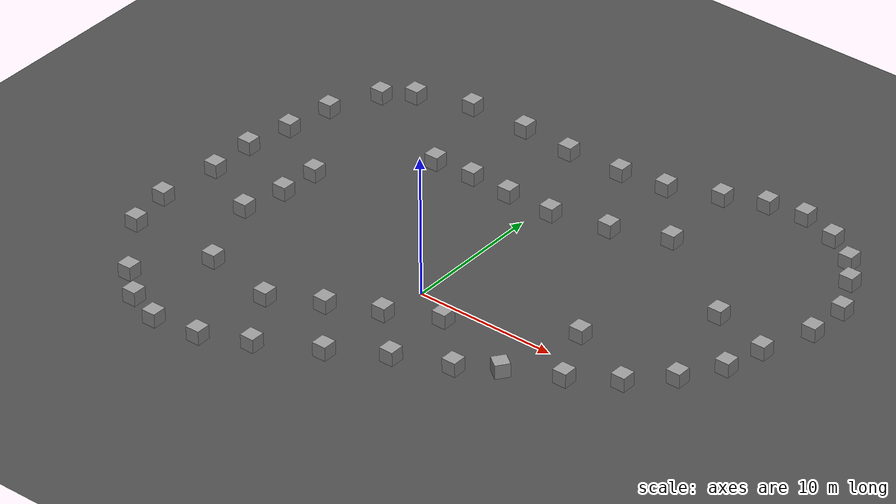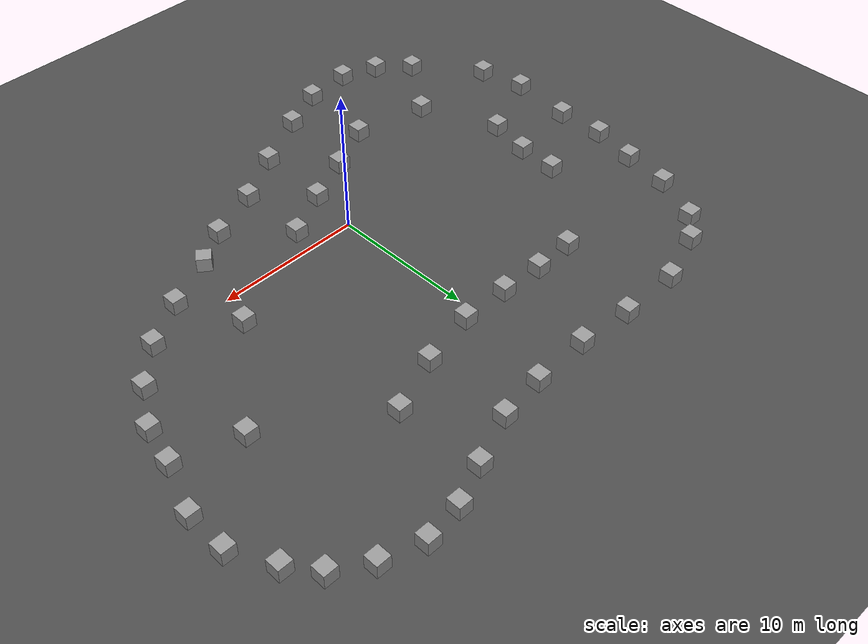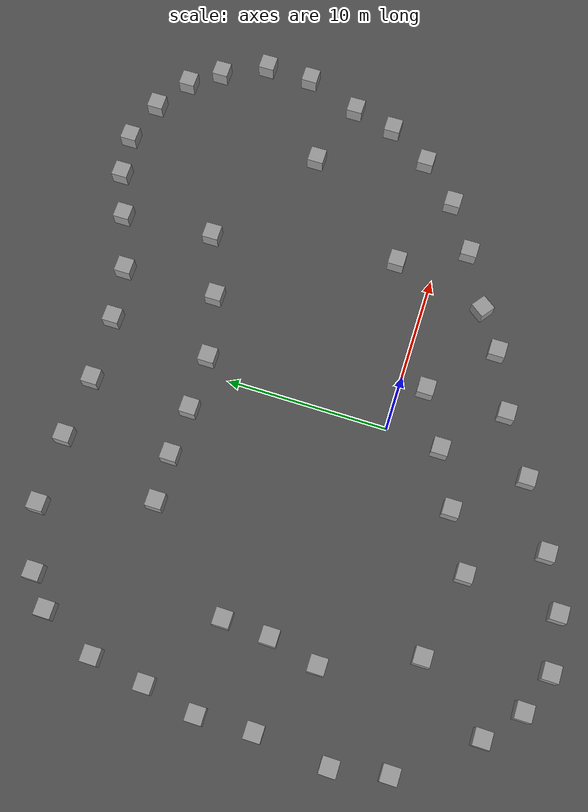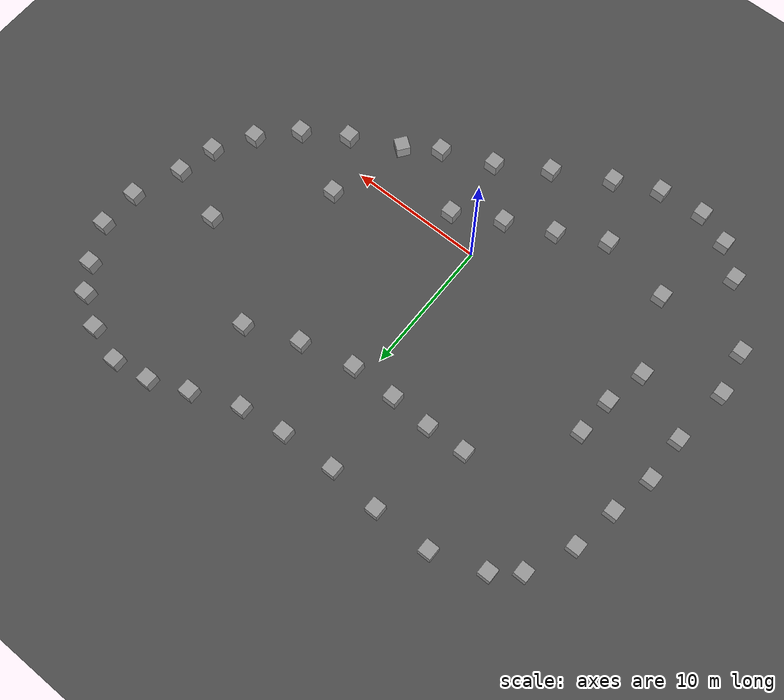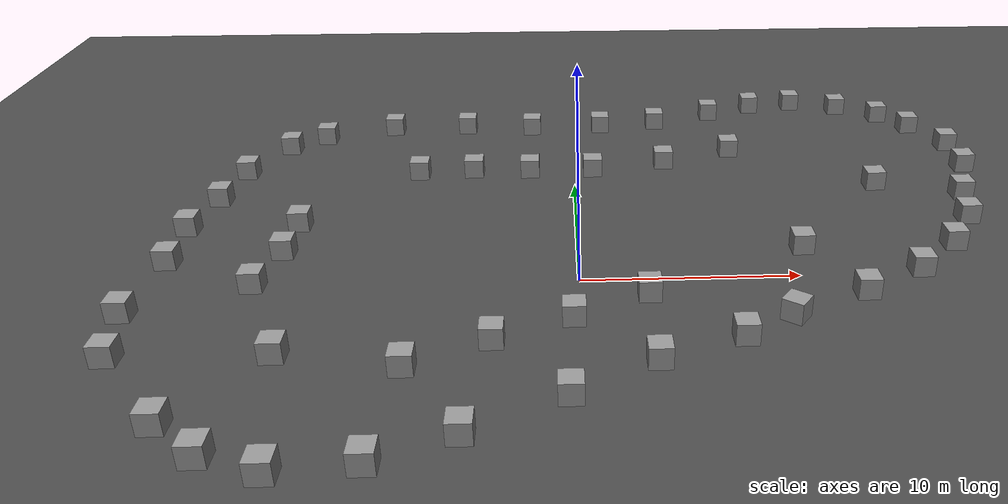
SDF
<sdf version="1.7">
 <world name="default">
  <scene>
   <sky><clouds><speed>3</speed></clouds></sky>
   <ambient>1 1 1 1</ambient>
   <shadows>0</shadows>
   <background>0.7 0.7 0.7 1</background>
  </scene>
  <light name="sun" type="directional">
   <pose>0 0 10 0 -0 0</pose>
   <diffuse>0.8 0.8 0.8 1</diffuse>
   <specular>0.1 0.1 0.1 1</specular>
   <attenuation>
    <range>1000</range>
    <constant>0.9</constant>
    <linear>0.01</linear>
    <quadratic>0.001</quadratic>
   </attenuation>
   <direction>-0.5 0.5 -1</direction>
   <spot><inner_angle>0</inner_angle><outer_angle>0</outer_angle><falloff>0</falloff></spot>
  </light>
  <model name="ground_plane">
   <static>1</static>
   <link name="link">
    <collision name="collision">
     <geometry><plane><normal>0 0 1</normal><size>120 120</size></plane></geometry>
     <surface><friction><ode><mu>100</mu><mu2>50</mu2></ode></friction></surface>
    </collision>
    <visual name="visual">
     <cast_shadows>0</cast_shadows>
     <geometry><plane><normal>0 0 1</normal><size>120 120</size></plane></geometry>
     <material><script><uri>model://materials/gazebo.material</uri><name>Gazebo/Asphalt</name></script></material>
    </visual>
   </link>
  </model>
  <gravity>0 0 -9.8</gravity>
  <magnetic_field>6e-06 2.3e-05 -4.2e-05</magnetic_field>
  <atmosphere type="adiabatic"/>
  <physics type="ode">
   <max_step_size>0.001</max_step_size>
   <real_time_factor>1</real_time_factor>
   <real_time_update_rate>1000</real_time_update_rate>
  </physics>
  <spherical_coordinates>
   <surface_model>EARTH_WGS84</surface_model>
   <latitude_deg>0</latitude_deg>
   <longitude_deg>0</longitude_deg>
   <elevation>0</elevation>
   <heading_deg>0</heading_deg>
  </spherical_coordinates>
  <model name="unit_box">
   <pose>-10.5494 18.0926 0.5 0 -0 0</pose>
   <link name="link">
    <inertial>
     <mass>1</mass>
     <inertia>
      <ixx>0.166667</ixx>
      <ixy>0</ixy>
      <ixz>0</ixz>
      <iyy>0.166667</iyy>
      <iyz>0</iyz>
      <izz>0.166667</izz>
     </inertia>
    </inertial>
    <collision name="collision"><geometry><box><size>1 1 1</size></box></geometry></collision>
    <visual name="visual">
     <geometry><box><size>1 1 1</size></box></geometry>
     <material>
      <script><name>Gazebo/Grey</name><uri>file://media/materials/scripts/gazebo.material</uri></script>
     </material>
    </visual>
   </link>
  </model>
  <model name="unit_box_0">
   <pose>-6.23934 18.1289 0.5 0 -0 0</pose>
   <link name="link">
    <inertial>
     <mass>1</mass>
     <inertia>
      <ixx>0.166667</ixx>
      <ixy>0</ixy>
      <ixz>0</ixz>
      <iyy>0.166667</iyy>
      <iyz>0</iyz>
      <izz>0.166667</izz>
     </inertia>
    </inertial>
    <collision name="collision"><geometry><box><size>1 1 1</size></box></geometry></collision>
    <visual name="visual">
     <geometry><box><size>1 1 1</size></box></geometry>
     <material>
      <script><name>Gazebo/Grey</name><uri>file://media/materials/scripts/gazebo.material</uri></script>
     </material>
    </visual>
   </link>
  </model>
  <model name="unit_box_1">
   <pose>-2.39127 17.8381 0.5 0 -0 0</pose>
   <link name="link">
    <inertial>
     <mass>1</mass>
     <inertia>
      <ixx>0.166667</ixx>
      <ixy>0</ixy>
      <ixz>0</ixz>
      <iyy>0.166667</iyy>
      <iyz>0</iyz>
      <izz>0.166667</izz>
     </inertia>
    </inertial>
    <collision name="collision"><geometry><box><size>1 1 1</size></box></geometry></collision>
    <visual name="visual">
     <geometry><box><size>1 1 1</size></box></geometry>
     <material>
      <script><name>Gazebo/Grey</name><uri>file://media/materials/scripts/gazebo.material</uri></script>
     </material>
    </visual>
   </link>
  </model>
  <model name="unit_box_2">
   <pose>-2.39961 11.603 0.5 0 -0 0</pose>
   <link name="link">
    <inertial>
     <mass>1</mass>
     <inertia>
      <ixx>0.166667</ixx>
      <ixy>0</ixy>
      <ixz>0</ixz>
      <iyy>0.166667</iyy>
      <iyz>0</iyz>
      <izz>0.166667</izz>
     </inertia>
    </inertial>
    <collision name="collision"><geometry><box><size>1 1 1</size></box></geometry></collision>
    <visual name="visual">
     <geometry><box><size>1 1 1</size></box></geometry>
     <material>
      <script><name>Gazebo/Grey</name><uri>file://media/materials/scripts/gazebo.material</uri></script>
     </material>
    </visual>
   </link>
  </model>
  <model name="unit_box_3">
   <pose>4.9539 12.5053 0.5 0 -0 0</pose>
   <link name="link">
    <inertial>
     <mass>1</mass>
     <inertia>
      <ixx>0.166667</ixx>
      <ixy>0</ixy>
      <ixz>0</ixz>
      <iyy>0.166667</iyy>
      <iyz>0</iyz>
      <izz>0.166667</izz>
     </inertia>
    </inertial>
    <collision name="collision"><geometry><box><size>1 1 1</size></box></geometry></collision>
    <visual name="visual">
     <geometry><box><size>1 1 1</size></box></geometry>
     <material>
      <script><name>Gazebo/Grey</name><uri>file://media/materials/scripts/gazebo.material</uri></script>
     </material>
    </visual>
   </link>
  </model>
  <model name="unit_box_4">
   <pose>8.79453 13.9991 0.5 0 -0 0</pose>
   <link name="link">
    <inertial>
     <mass>1</mass>
     <inertia>
      <ixx>0.166667</ixx>
      <ixy>0</ixy>
      <ixz>0</ixz>
      <iyy>0.166667</iyy>
      <iyz>0</iyz>
      <izz>0.166667</izz>
     </inertia>
    </inertial>
    <collision name="collision"><geometry><box><size>1 1 1</size></box></geometry></collision>
    <visual name="visual">
     <geometry><box><size>1 1 1</size></box></geometry>
     <material>
      <script><name>Gazebo/Grey</name><uri>file://media/materials/scripts/gazebo.material</uri></script>
     </material>
    </visual>
   </link>
  </model>
  <model name="unit_box_5">
   <pose>1.00676 11.6077 0.5 0 -0 0</pose>
   <link name="link">
    <inertial>
     <mass>1</mass>
     <inertia>
      <ixx>0.166667</ixx>
      <ixy>0</ixy>
      <ixz>0</ixz>
      <iyy>0.166667</iyy>
      <iyz>0</iyz>
      <izz>0.166667</izz>
     </inertia>
    </inertial>
    <collision name="collision"><geometry><box><size>1 1 1</size></box></geometry></collision>
    <visual name="visual">
     <geometry><box><size>1 1 1</size></box></geometry>
     <material>
      <script><name>Gazebo/Grey</name><uri>file://media/materials/scripts/gazebo.material</uri></script>
     </material>
    </visual>
   </link>
  </model>
  <model name="unit_box_6">
   <pose>4.97314 18.4417 0.5 0 -0 0</pose>
   <link name="link">
    <inertial>
     <mass>1</mass>
     <inertia>
      <ixx>0.166667</ixx>
      <ixy>0</ixy>
      <ixz>0</ixz>
      <iyy>0.166667</iyy>
      <iyz>0</iyz>
      <izz>0.166667</izz>
     </inertia>
    </inertial>
    <collision name="collision"><geometry><box><size>1 1 1</size></box></geometry></collision>
    <visual name="visual">
     <geometry><box><size>1 1 1</size></box></geometry>
     <material>
      <script><name>Gazebo/Grey</name><uri>file://media/materials/scripts/gazebo.material</uri></script>
     </material>
    </visual>
   </link>
  </model>
  <model name="unit_box_7">
   <pose>1.6664 17.997 0.5 0 -0 0</pose>
   <link name="link">
    <inertial>
     <mass>1</mass>
     <inertia>
      <ixx>0.166667</ixx>
      <ixy>0</ixy>
      <ixz>0</ixz>
      <iyy>0.166667</iyy>
      <iyz>0</iyz>
      <izz>0.166667</izz>
     </inertia>
    </inertial>
    <collision name="collision"><geometry><box><size>1 1 1</size></box></geometry></collision>
    <visual name="visual">
     <geometry><box><size>1 1 1</size></box></geometry>
     <material>
      <script><name>Gazebo/Grey</name><uri>file://media/materials/scripts/gazebo.material</uri></script>
     </material>
    </visual>
   </link>
  </model>
  <model name="unit_box_8">
   <pose>19.5135 5.24704 0.5 0 -0 0</pose>
   <link name="link">
    <inertial>
     <mass>1</mass>
     <inertia>
      <ixx>0.166667</ixx>
      <ixy>0</ixy>
      <ixz>0</ixz>
      <iyy>0.166667</iyy>
      <iyz>0</iyz>
      <izz>0.166667</izz>
     </inertia>
    </inertial>
    <collision name="collision"><geometry><box><size>1 1 1</size></box></geometry></collision>
    <visual name="visual">
     <geometry><box><size>1 1 1</size></box></geometry>
     <material>
      <script><name>Gazebo/Grey</name><uri>file://media/materials/scripts/gazebo.material</uri></script>
     </material>
    </visual>
   </link>
  </model>
  <model name="unit_box_9">
   <pose>21.4606 11.4533 0.5 0 -0 0</pose>
   <link name="link">
    <inertial>
     <mass>1</mass>
     <inertia>
      <ixx>0.166667</ixx>
      <ixy>0</ixy>
      <ixz>0</ixz>
      <iyy>0.166667</iyy>
      <iyz>0</iyz>
      <izz>0.166667</izz>
     </inertia>
    </inertial>
    <collision name="collision"><geometry><box><size>1 1 1</size></box></geometry></collision>
    <visual name="visual">
     <geometry><box><size>1 1 1</size></box></geometry>
     <material>
      <script><name>Gazebo/Grey</name><uri>file://media/materials/scripts/gazebo.material</uri></script>
     </material>
    </visual>
   </link>
  </model>
  <model name="unit_box_10">
   <pose>21.5324 14.4386 0.5 0 -0 0</pose>
   <link name="link">
    <inertial>
     <mass>1</mass>
     <inertia>
      <ixx>0.166667</ixx>
      <ixy>0</ixy>
      <ixz>0</ixz>
      <iyy>0.166667</iyy>
      <iyz>0</iyz>
      <izz>0.166667</izz>
     </inertia>
    </inertial>
    <collision name="collision"><geometry><box><size>1 1 1</size></box></geometry></collision>
    <visual name="visual">
     <geometry><box><size>1 1 1</size></box></geometry>
     <material>
      <script><name>Gazebo/Grey</name><uri>file://media/materials/scripts/gazebo.material</uri></script>
     </material>
    </visual>
   </link>
  </model>
  <model name="unit_box_11">
   <pose>20.1719 7.97138 0.5 0 -0 0</pose>
   <link name="link">
    <inertial>
     <mass>1</mass>
     <inertia>
      <ixx>0.166667</ixx>
      <ixy>0</ixy>
      <ixz>0</ixz>
      <iyy>0.166667</iyy>
      <iyz>0</iyz>
      <izz>0.166667</izz>
     </inertia>
    </inertial>
    <collision name="collision"><geometry><box><size>1 1 1</size></box></geometry></collision>
    <visual name="visual">
     <geometry><box><size>1 1 1</size></box></geometry>
     <material>
      <script><name>Gazebo/Grey</name><uri>file://media/materials/scripts/gazebo.material</uri></script>
     </material>
    </visual>
   </link>
  </model>
  <model name="unit_box_12">
   <pose>15.9184 9.31234 0.5 0 -0 0</pose>
   <link name="link">
    <inertial>
     <mass>1</mass>
     <inertia>
      <ixx>0.166667</ixx>
      <ixy>0</ixy>
      <ixz>0</ixz>
      <iyy>0.166667</iyy>
      <iyz>0</iyz>
      <izz>0.166667</izz>
     </inertia>
    </inertial>
    <collision name="collision"><geometry><box><size>1 1 1</size></box></geometry></collision>
    <visual name="visual">
     <geometry><box><size>1 1 1</size></box></geometry>
     <material>
      <script><name>Gazebo/Grey</name><uri>file://media/materials/scripts/gazebo.material</uri></script>
     </material>
    </visual>
   </link>
  </model>
  <model name="unit_box_13">
   <pose>17.8651 2.54457 0.5 0 -0 0</pose>
   <link name="link">
    <inertial>
     <mass>1</mass>
     <inertia>
      <ixx>0.166667</ixx>
      <ixy>0</ixy>
      <ixz>0</ixz>
      <iyy>0.166667</iyy>
      <iyz>0</iyz>
      <izz>0.166667</izz>
     </inertia>
    </inertial>
    <collision name="collision"><geometry><box><size>1 1 1</size></box></geometry></collision>
    <visual name="visual">
     <geometry><box><size>1 1 1</size></box></geometry>
     <material>
      <script><name>Gazebo/Grey</name><uri>file://media/materials/scripts/gazebo.material</uri></script>
     </material>
    </visual>
   </link>
  </model>
  <model name="unit_box_14">
   <pose>15.5249 0.145088 0.5 0 -0 0</pose>
   <link name="link">
    <inertial>
     <mass>1</mass>
     <inertia>
      <ixx>0.166667</ixx>
      <ixy>0</ixy>
      <ixz>0</ixz>
      <iyy>0.166667</iyy>
      <iyz>0</iyz>
      <izz>0.166667</izz>
     </inertia>
    </inertial>
    <collision name="collision"><geometry><box><size>1 1 1</size></box></geometry></collision>
    <visual name="visual">
     <geometry><box><size>1 1 1</size></box></geometry>
     <material>
      <script><name>Gazebo/Grey</name><uri>file://media/materials/scripts/gazebo.material</uri></script>
     </material>
    </visual>
   </link>
  </model>
  <model name="unit_box_15">
   <pose>10.5541 2.41492 0.5 0 -0 0</pose>
   <link name="link">
    <inertial>
     <mass>1</mass>
     <inertia>
      <ixx>0.166667</ixx>
      <ixy>0</ixy>
      <ixz>0</ixz>
      <iyy>0.166667</iyy>
      <iyz>0</iyz>
      <izz>0.166667</izz>
     </inertia>
    </inertial>
    <collision name="collision"><geometry><box><size>1 1 1</size></box></geometry></collision>
    <visual name="visual">
     <geometry><box><size>1 1 1</size></box></geometry>
     <material>
      <script><name>Gazebo/Grey</name><uri>file://media/materials/scripts/gazebo.material</uri></script>
     </material>
    </visual>
   </link>
  </model>
  <model name="unit_box_16">
   <pose>12.5301 -1.72327 0.5 0 -0 0</pose>
   <link name="link">
    <inertial>
     <mass>1</mass>
     <inertia>
      <ixx>0.166667</ixx>
      <ixy>0</ixy>
      <ixz>0</ixz>
      <iyy>0.166667</iyy>
      <iyz>0</iyz>
      <izz>0.166667</izz>
     </inertia>
    </inertial>
    <collision name="collision"><geometry><box><size>1 1 1</size></box></geometry></collision>
    <visual name="visual">
     <geometry><box><size>1 1 1</size></box></geometry>
     <material>
      <script><name>Gazebo/Grey</name><uri>file://media/materials/scripts/gazebo.material</uri></script>
     </material>
    </visual>
   </link>
  </model>
  <model name="unit_box_17">
   <pose>9.02863 -3.46364 0.5 2.50444 -1.57079 3.14159</pose>
   <link name="link">
    <inertial>
     <mass>1</mass>
     <inertia>
      <ixx>0.166667</ixx>
      <ixy>0</ixy>
      <ixz>0</ixz>
      <iyy>0.166667</iyy>
      <iyz>0</iyz>
      <izz>0.166667</izz>
     </inertia>
    </inertial>
    <collision name="collision"><geometry><box><size>1 1 1</size></box></geometry></collision>
    <visual name="visual">
     <geometry><box><size>1 1 1</size></box></geometry>
     <material>
      <script><name>Gazebo/Grey</name><uri>file://media/materials/scripts/gazebo.material</uri></script>
     </material>
    </visual>
   </link>
  </model>
  <model name="unit_box_18">
   <pose>3.02903 -1.55356 0.5 0 -0 0</pose>
   <link name="link">
    <inertial>
     <mass>1</mass>
     <inertia>
      <ixx>0.166667</ixx>
      <ixy>0</ixy>
      <ixz>0</ixz>
      <iyy>0.166667</iyy>
      <iyz>0</iyz>
      <izz>0.166667</izz>
     </inertia>
    </inertial>
    <collision name="collision"><geometry><box><size>1 1 1</size></box></geometry></collision>
    <visual name="visual">
     <geometry><box><size>1 1 1</size></box></geometry>
     <material>
      <script><name>Gazebo/Grey</name><uri>file://media/materials/scripts/gazebo.material</uri></script>
     </material>
    </visual>
   </link>
  </model>
  <model name="unit_box_19">
   <pose>6.64773 -5.03198 0.5 0 -0 0</pose>
   <link name="link">
    <inertial>
     <mass>1</mass>
     <inertia>
      <ixx>0.166667</ixx>
      <ixy>0</ixy>
      <ixz>0</ixz>
      <iyy>0.166667</iyy>
      <iyz>0</iyz>
      <izz>0.166667</izz>
     </inertia>
    </inertial>
    <collision name="collision"><geometry><box><size>1 1 1</size></box></geometry></collision>
    <visual name="visual">
     <geometry><box><size>1 1 1</size></box></geometry>
     <material>
      <script><name>Gazebo/Grey</name><uri>file://media/materials/scripts/gazebo.material</uri></script>
     </material>
    </visual>
   </link>
  </model>
  <model name="unit_box_20">
   <pose>3.00149 -6.54146 0.5 0 -0 0</pose>
   <link name="link">
    <inertial>
     <mass>1</mass>
     <inertia>
      <ixx>0.166667</ixx>
      <ixy>0</ixy>
      <ixz>0</ixz>
      <iyy>0.166667</iyy>
      <iyz>0</iyz>
      <izz>0.166667</izz>
     </inertia>
    </inertial>
    <collision name="collision"><geometry><box><size>1 1 1</size></box></geometry></collision>
    <visual name="visual">
     <geometry><box><size>1 1 1</size></box></geometry>
     <material>
      <script><name>Gazebo/Grey</name><uri>file://media/materials/scripts/gazebo.material</uri></script>
     </material>
    </visual>
   </link>
  </model>
  <model name="unit_box_21">
   <pose>-0.287348 -3.34583 0.5 0 -0 0</pose>
   <link name="link">
    <inertial>
     <mass>1</mass>
     <inertia>
      <ixx>0.166667</ixx>
      <ixy>0</ixy>
      <ixz>0</ixz>
      <iyy>0.166667</iyy>
      <iyz>0</iyz>
      <izz>0.166667</izz>
     </inertia>
    </inertial>
    <collision name="collision"><geometry><box><size>1 1 1</size></box></geometry></collision>
    <visual name="visual">
     <geometry><box><size>1 1 1</size></box></geometry>
     <material>
      <script><name>Gazebo/Grey</name><uri>file://media/materials/scripts/gazebo.material</uri></script>
     </material>
    </visual>
   </link>
  </model>
  <model name="unit_box_22">
   <pose>-3.6435 -4.90846 0.5 0 -0 0</pose>
   <link name="link">
    <inertial>
     <mass>1</mass>
     <inertia>
      <ixx>0.166667</ixx>
      <ixy>0</ixy>
      <ixz>0</ixz>
      <iyy>0.166667</iyy>
      <iyz>0</iyz>
      <izz>0.166667</izz>
     </inertia>
    </inertial>
    <collision name="collision"><geometry><box><size>1 1 1</size></box></geometry></collision>
    <visual name="visual">
     <geometry><box><size>1 1 1</size></box></geometry>
     <material>
      <script><name>Gazebo/Grey</name><uri>file://media/materials/scripts/gazebo.material</uri></script>
     </material>
    </visual>
   </link>
  </model>
  <model name="unit_box_23">
   <pose>-7.02158 -6.6234 0.5 0 -0 0</pose>
   <link name="link">
    <inertial>
     <mass>1</mass>
     <inertia>
      <ixx>0.166667</ixx>
      <ixy>0</ixy>
      <ixz>0</ixz>
      <iyy>0.166667</iyy>
      <iyz>0</iyz>
      <izz>0.166667</izz>
     </inertia>
    </inertial>
    <collision name="collision"><geometry><box><size>1 1 1</size></box></geometry></collision>
    <visual name="visual">
     <geometry><box><size>1 1 1</size></box></geometry>
     <material>
      <script><name>Gazebo/Grey</name><uri>file://media/materials/scripts/gazebo.material</uri></script>
     </material>
    </visual>
   </link>
  </model>
  <model name="unit_box_24">
   <pose>-0.507915 -8.66868 0.5 0 -0 0</pose>
   <link name="link">
    <inertial>
     <mass>1</mass>
     <inertia>
      <ixx>0.166667</ixx>
      <ixy>0</ixy>
      <ixz>0</ixz>
      <iyy>0.166667</iyy>
      <iyz>0</iyz>
      <izz>0.166667</izz>
     </inertia>
    </inertial>
    <collision name="collision"><geometry><box><size>1 1 1</size></box></geometry></collision>
    <visual name="visual">
     <geometry><box><size>1 1 1</size></box></geometry>
     <material>
      <script><name>Gazebo/Grey</name><uri>file://media/materials/scripts/gazebo.material</uri></script>
     </material>
    </visual>
   </link>
  </model>
  <model name="unit_box_25">
   <pose>-4.44028 -10.7902 0.5 0 -0 0</pose>
   <link name="link">
    <inertial>
     <mass>1</mass>
     <inertia>
      <ixx>0.166667</ixx>
      <ixy>0</ixy>
      <ixz>0</ixz>
      <iyy>0.166667</iyy>
      <iyz>0</iyz>
      <izz>0.166667</izz>
     </inertia>
    </inertial>
    <collision name="collision"><geometry><box><size>1 1 1</size></box></geometry></collision>
    <visual name="visual">
     <geometry><box><size>1 1 1</size></box></geometry>
     <material>
      <script><name>Gazebo/Grey</name><uri>file://media/materials/scripts/gazebo.material</uri></script>
     </material>
    </visual>
   </link>
  </model>
  <model name="unit_box_26">
   <pose>-7.57529 -12.2264 0.5 0 -0 0</pose>
   <link name="link">
    <inertial>
     <mass>1</mass>
     <inertia>
      <ixx>0.166667</ixx>
      <ixy>0</ixy>
      <ixz>0</ixz>
      <iyy>0.166667</iyy>
      <iyz>0</iyz>
      <izz>0.166667</izz>
     </inertia>
    </inertial>
    <collision name="collision"><geometry><box><size>1 1 1</size></box></geometry></collision>
    <visual name="visual">
     <geometry><box><size>1 1 1</size></box></geometry>
     <material>
      <script><name>Gazebo/Grey</name><uri>file://media/materials/scripts/gazebo.material</uri></script>
     </material>
    </visual>
   </link>
  </model>
  <model name="unit_box_27">
   <pose>-10.8684 -12.5618 0.5 0 -0 0</pose>
   <link name="link">
    <inertial>
     <mass>1</mass>
     <inertia>
      <ixx>0.166667</ixx>
      <ixy>0</ixy>
      <ixz>0</ixz>
      <iyy>0.166667</iyy>
      <iyz>0</iyz>
      <izz>0.166667</izz>
     </inertia>
    </inertial>
    <collision name="collision"><geometry><box><size>1 1 1</size></box></geometry></collision>
    <visual name="visual">
     <geometry><box><size>1 1 1</size></box></geometry>
     <material>
      <script><name>Gazebo/Grey</name><uri>file://media/materials/scripts/gazebo.material</uri></script>
     </material>
    </visual>
   </link>
  </model>
  <model name="unit_box_28">
   <pose>-13.342 -11.6286 0.5 0 -0 0</pose>
   <link name="link">
    <inertial>
     <mass>1</mass>
     <inertia>
      <ixx>0.166667</ixx>
      <ixy>0</ixy>
      <ixz>0</ixz>
      <iyy>0.166667</iyy>
      <iyz>0</iyz>
      <izz>0.166667</izz>
     </inertia>
    </inertial>
    <collision name="collision"><geometry><box><size>1 1 1</size></box></geometry></collision>
    <visual name="visual">
     <geometry><box><size>1 1 1</size></box></geometry>
     <material>
      <script><name>Gazebo/Grey</name><uri>file://media/materials/scripts/gazebo.material</uri></script>
     </material>
    </visual>
   </link>
  </model>
  <model name="unit_box_29">
   <pose>-12.1977 -5.56433 0.5 0 -0 0</pose>
   <link name="link">
    <inertial>
     <mass>1</mass>
     <inertia>
      <ixx>0.166667</ixx>
      <ixy>0</ixy>
      <ixz>0</ixz>
      <iyy>0.166667</iyy>
      <iyz>0</iyz>
      <izz>0.166667</izz>
     </inertia>
    </inertial>
    <collision name="collision"><geometry><box><size>1 1 1</size></box></geometry></collision>
    <visual name="visual">
     <geometry><box><size>1 1 1</size></box></geometry>
     <material>
      <script><name>Gazebo/Grey</name><uri>file://media/materials/scripts/gazebo.material</uri></script>
     </material>
    </visual>
   </link>
  </model>
  <model name="unit_box_30">
   <pose>-15.3849 -9.8035 0.5 0 -0 0</pose>
   <link name="link">
    <inertial>
     <mass>1</mass>
     <inertia>
      <ixx>0.166667</ixx>
      <ixy>0</ixy>
      <ixz>0</ixz>
      <iyy>0.166667</iyy>
      <iyz>0</iyz>
      <izz>0.166667</izz>
     </inertia>
    </inertial>
    <collision name="collision"><geometry><box><size>1 1 1</size></box></geometry></collision>
    <visual name="visual">
     <geometry><box><size>1 1 1</size></box></geometry>
     <material>
      <script><name>Gazebo/Grey</name><uri>file://media/materials/scripts/gazebo.material</uri></script>
     </material>
    </visual>
   </link>
  </model>
  <model name="unit_box_31">
   <pose>-18.6872 -5.53859 0.5 0 -0 0</pose>
   <link name="link">
    <inertial>
     <mass>1</mass>
     <inertia>
      <ixx>0.166667</ixx>
      <ixy>0</ixy>
      <ixz>0</ixz>
      <iyy>0.166667</iyy>
      <iyz>0</iyz>
      <izz>0.166667</izz>
     </inertia>
    </inertial>
    <collision name="collision"><geometry><box><size>1 1 1</size></box></geometry></collision>
    <visual name="visual">
     <geometry><box><size>1 1 1</size></box></geometry>
     <material>
      <script><name>Gazebo/Grey</name><uri>file://media/materials/scripts/gazebo.material</uri></script>
     </material>
    </visual>
   </link>
  </model>
  <model name="unit_box_32">
   <pose>-13.5591 5.71605 0.5 0 -0 0</pose>
   <link name="link">
    <inertial>
     <mass>1</mass>
     <inertia>
      <ixx>0.166667</ixx>
      <ixy>0</ixy>
      <ixz>0</ixz>
      <iyy>0.166667</iyy>
      <iyz>0</iyz>
      <izz>0.166667</izz>
     </inertia>
    </inertial>
    <collision name="collision"><geometry><box><size>1 1 1</size></box></geometry></collision>
    <visual name="visual">
     <geometry><box><size>1 1 1</size></box></geometry>
     <material>
      <script><name>Gazebo/Grey</name><uri>file://media/materials/scripts/gazebo.material</uri></script>
     </material>
    </visual>
   </link>
  </model>
  <model name="unit_box_33">
   <pose>-13.7132 2.89505 0.5 0 -0 0</pose>
   <link name="link">
    <inertial>
     <mass>1</mass>
     <inertia>
      <ixx>0.166667</ixx>
      <ixy>0</ixy>
      <ixz>0</ixz>
      <iyy>0.166667</iyy>
      <iyz>0</iyz>
      <izz>0.166667</izz>
     </inertia>
    </inertial>
    <collision name="collision"><geometry><box><size>1 1 1</size></box></geometry></collision>
    <visual name="visual">
     <geometry><box><size>1 1 1</size></box></geometry>
     <material>
      <script><name>Gazebo/Grey</name><uri>file://media/materials/scripts/gazebo.material</uri></script>
     </material>
    </visual>
   </link>
  </model>
  <model name="unit_box_34">
   <pose>-14.3919 -0.117081 0.5 0 -0 0</pose>
   <link name="link">
    <inertial>
     <mass>1</mass>
     <inertia>
      <ixx>0.166667</ixx>
      <ixy>0</ixy>
      <ixz>0</ixz>
      <iyy>0.166667</iyy>
      <iyz>0</iyz>
      <izz>0.166667</izz>
     </inertia>
    </inertial>
    <collision name="collision"><geometry><box><size>1 1 1</size></box></geometry></collision>
    <visual name="visual">
     <geometry><box><size>1 1 1</size></box></geometry>
     <material>
      <script><name>Gazebo/Grey</name><uri>file://media/materials/scripts/gazebo.material</uri></script>
     </material>
    </visual>
   </link>
  </model>
  <model name="unit_box_35">
   <pose>-19.307 -2.29817 0.5 0 -0 0</pose>
   <link name="link">
    <inertial>
     <mass>1</mass>
     <inertia>
      <ixx>0.166667</ixx>
      <ixy>0</ixy>
      <ixz>0</ixz>
      <iyy>0.166667</iyy>
      <iyz>0</iyz>
      <izz>0.166667</izz>
     </inertia>
    </inertial>
    <collision name="collision"><geometry><box><size>1 1 1</size></box></geometry></collision>
    <visual name="visual">
     <geometry><box><size>1 1 1</size></box></geometry>
     <material>
      <script><name>Gazebo/Grey</name><uri>file://media/materials/scripts/gazebo.material</uri></script>
     </material>
    </visual>
   </link>
  </model>
  <model name="unit_box_36">
   <pose>-18.8246 2.12866 0.5 0 -0 0</pose>
   <link name="link">
    <inertial>
     <mass>1</mass>
     <inertia>
      <ixx>0.166667</ixx>
      <ixy>0</ixy>
      <ixz>0</ixz>
      <iyy>0.166667</iyy>
      <iyz>0</iyz>
      <izz>0.166667</izz>
     </inertia>
    </inertial>
    <collision name="collision"><geometry><box><size>1 1 1</size></box></geometry></collision>
    <visual name="visual">
     <geometry><box><size>1 1 1</size></box></geometry>
     <material>
      <script><name>Gazebo/Grey</name><uri>file://media/materials/scripts/gazebo.material</uri></script>
     </material>
    </visual>
   </link>
  </model>
  <model name="unit_box_37">
   <pose>-18.9096 5.46903 0.5 0 -0 0</pose>
   <link name="link">
    <inertial>
     <mass>1</mass>
     <inertia>
      <ixx>0.166667</ixx>
      <ixy>0</ixy>
      <ixz>0</ixz>
      <iyy>0.166667</iyy>
      <iyz>0</iyz>
      <izz>0.166667</izz>
     </inertia>
    </inertial>
    <collision name="collision"><geometry><box><size>1 1 1</size></box></geometry></collision>
    <visual name="visual">
     <geometry><box><size>1 1 1</size></box></geometry>
     <material>
      <script><name>Gazebo/Grey</name><uri>file://media/materials/scripts/gazebo.material</uri></script>
     </material>
    </visual>
   </link>
  </model>
  <model name="unit_box_38">
   <pose>-18.233 8.69932 0.5 0 -0 0</pose>
   <link name="link">
    <inertial>
     <mass>1</mass>
     <inertia>
      <ixx>0.166667</ixx>
      <ixy>0</ixy>
      <ixz>0</ixz>
      <iyy>0.166667</iyy>
      <iyz>0</iyz>
      <izz>0.166667</izz>
     </inertia>
    </inertial>
    <collision name="collision"><geometry><box><size>1 1 1</size></box></geometry></collision>
    <visual name="visual">
     <geometry><box><size>1 1 1</size></box></geometry>
     <material>
      <script><name>Gazebo/Grey</name><uri>file://media/materials/scripts/gazebo.material</uri></script>
     </material>
    </visual>
   </link>
  </model>
  <model name="unit_box_39">
   <pose>-17.6877 12.0354 0.5 0 -0 0</pose>
   <link name="link">
    <inertial>
     <mass>1</mass>
     <inertia>
      <ixx>0.166667</ixx>
      <ixy>0</ixy>
      <ixz>0</ixz>
      <iyy>0.166667</iyy>
      <iyz>0</iyz>
      <izz>0.166667</izz>
     </inertia>
    </inertial>
    <collision name="collision"><geometry><box><size>1 1 1</size></box></geometry></collision>
    <visual name="visual">
     <geometry><box><size>1 1 1</size></box></geometry>
     <material>
      <script><name>Gazebo/Grey</name><uri>file://media/materials/scripts/gazebo.material</uri></script>
     </material>
    </visual>
   </link>
  </model>
  <model name="unit_box_40">
   <pose>-5.4364 11.7351 0.5 -0 -0 -0</pose>
   <link name="link">
    <inertial>
     <mass>1</mass>
     <inertia>
      <ixx>0.166667</ixx>
      <ixy>0</ixy>
      <ixz>0</ixz>
      <iyy>0.166667</iyy>
      <iyz>0</iyz>
      <izz>0.166667</izz>
     </inertia>
    </inertial>
    <collision name="collision"><geometry><box><size>1 1 1</size></box></geometry></collision>
    <visual name="visual">
     <geometry><box><size>1 1 1</size></box></geometry>
     <material>
      <script><name>Gazebo/Grey</name><uri>file://media/materials/scripts/gazebo.material</uri></script>
     </material>
    </visual>
   </link>
  </model>
  <model name="unit_box_41">
   <pose>-8.35345 11.5946 0.5 -0 -0 -0</pose>
   <link name="link">
    <inertial>
     <mass>1</mass>
     <inertia>
      <ixx>0.166667</ixx>
      <ixy>0</ixy>
      <ixz>0</ixz>
      <iyy>0.166667</iyy>
      <iyz>0</iyz>
      <izz>0.166667</izz>
     </inertia>
    </inertial>
    <collision name="collision"><geometry><box><size>1 1 1</size></box></geometry></collision>
    <visual name="visual">
     <geometry><box><size>1 1 1</size></box></geometry>
     <material>
      <script><name>Gazebo/Grey</name><uri>file://media/materials/scripts/gazebo.material</uri></script>
     </material>
    </visual>
   </link>
  </model>
  <model name="unit_box_42">
   <pose>20.1509 17.2046 0.5 0 -0 0</pose>
   <link name="link">
    <inertial>
     <mass>1</mass>
     <inertia>
      <ixx>0.166667</ixx>
      <ixy>0</ixy>
      <ixz>0</ixz>
      <iyy>0.166667</iyy>
      <iyz>0</iyz>
      <izz>0.166667</izz>
     </inertia>
    </inertial>
    <collision name="collision"><geometry><box><size>1 1 1</size></box></geometry></collision>
    <visual name="visual">
     <geometry><box><size>1 1 1</size></box></geometry>
     <material>
      <script><name>Gazebo/Grey</name><uri>file://media/materials/scripts/gazebo.material</uri></script>
     </material>
    </visual>
   </link>
  </model>
  <model name="unit_box_43">
   <pose>18.7944 19.0475 0.5 0 -0 0</pose>
   <link name="link">
    <inertial>
     <mass>1</mass>
     <inertia>
      <ixx>0.166667</ixx>
      <ixy>0</ixy>
      <ixz>0</ixz>
      <iyy>0.166667</iyy>
      <iyz>0</iyz>
      <izz>0.166667</izz>
     </inertia>
    </inertial>
    <collision name="collision"><geometry><box><size>1 1 1</size></box></geometry></collision>
    <visual name="visual">
     <geometry><box><size>1 1 1</size></box></geometry>
     <material>
      <script><name>Gazebo/Grey</name><uri>file://media/materials/scripts/gazebo.material</uri></script>
     </material>
    </visual>
   </link>
  </model>
  <model name="unit_box_44">
   <pose>16.5566 20.463 0.5 0 -0 0</pose>
   <link name="link">
    <inertial>
     <mass>1</mass>
     <inertia>
      <ixx>0.166667</ixx>
      <ixy>0</ixy>
      <ixz>0</ixz>
      <iyy>0.166667</iyy>
      <iyz>0</iyz>
      <izz>0.166667</izz>
     </inertia>
    </inertial>
    <collision name="collision"><geometry><box><size>1 1 1</size></box></geometry></collision>
    <visual name="visual">
     <geometry><box><size>1 1 1</size></box></geometry>
     <material>
      <script><name>Gazebo/Grey</name><uri>file://media/materials/scripts/gazebo.material</uri></script>
     </material>
    </visual>
   </link>
  </model>
  <model name="unit_box_45">
   <pose>8.43204 19.7968 0.5 0 -0 0</pose>
   <link name="link">
    <inertial>
     <mass>1</mass>
     <inertia>
      <ixx>0.166667</ixx>
      <ixy>0</ixy>
      <ixz>0</ixz>
      <iyy>0.166667</iyy>
      <iyz>0</iyz>
      <izz>0.166667</izz>
     </inertia>
    </inertial>
    <collision name="collision"><geometry><box><size>1 1 1</size></box></geometry></collision>
    <visual name="visual">
     <geometry><box><size>1 1 1</size></box></geometry>
     <material>
      <script><name>Gazebo/Grey</name><uri>file://media/materials/scripts/gazebo.material</uri></script>
     </material>
    </visual>
   </link>
  </model>
  <model name="unit_box_46">
   <pose>11.1696 20.9248 0.5 0 -0 0</pose>
   <link name="link">
    <inertial>
     <mass>1</mass>
     <inertia>
      <ixx>0.166667</ixx>
      <ixy>0</ixy>
      <ixz>0</ixz>
      <iyy>0.166667</iyy>
      <iyz>0</iyz>
      <izz>0.166667</izz>
     </inertia>
    </inertial>
    <collision name="collision"><geometry><box><size>1 1 1</size></box></geometry></collision>
    <visual name="visual">
     <geometry><box><size>1 1 1</size></box></geometry>
     <material>
      <script><name>Gazebo/Grey</name><uri>file://media/materials/scripts/gazebo.material</uri></script>
     </material>
    </visual>
   </link>
  </model>
  <model name="unit_box_47">
   <pose>13.8342 21.3113 0.5 0 -0 0</pose>
   <link name="link">
    <inertial>
     <mass>1</mass>
     <inertia>
      <ixx>0.166667</ixx>
      <ixy>0</ixy>
      <ixz>0</ixz>
      <iyy>0.166667</iyy>
      <iyz>0</iyz>
      <izz>0.166667</izz>
     </inertia>
    </inertial>
    <collision name="collision"><geometry><box><size>1 1 1</size></box></geometry></collision>
    <visual name="visual">
     <geometry><box><size>1 1 1</size></box></geometry>
     <material>
      <script><name>Gazebo/Grey</name><uri>file://media/materials/scripts/gazebo.material</uri></script>
     </material>
    </visual>
   </link>
  </model>
  <model name="unit_box_48">
   <pose>-16.0921 15.4224 0.499995 -1e-05 -0 0</pose>
   <link name="link">
    <inertial>
     <mass>1</mass>
     <inertia>
      <ixx>0.166667</ixx>
      <ixy>0</ixy>
      <ixz>0</ixz>
      <iyy>0.166667</iyy>
      <iyz>0</iyz>
      <izz>0.166667</izz>
     </inertia>
    </inertial>
    <collision name="collision"><geometry><box><size>1 1 1</size></box></geometry></collision>
    <visual name="visual">
     <geometry><box><size>1 1 1</size></box></geometry>
     <material>
      <script><name>Gazebo/Grey</name><uri>file://media/materials/scripts/gazebo.material</uri></script>
     </material>
    </visual>
   </link>
  </model>
  <model name="unit_box_49">
   <pose>-14.3164 16.828 0.5 0 -0 0</pose>
   <link name="link">
    <inertial>
     <mass>1</mass>
     <inertia>
      <ixx>0.166667</ixx>
      <ixy>0</ixy>
      <ixz>0</ixz>
      <iyy>0.166667</iyy>
      <iyz>0</iyz>
      <izz>0.166667</izz>
     </inertia>
    </inertial>
    <collision name="collision"><geometry><box><size>1 1 1</size></box></geometry></collision>
    <visual name="visual">
     <geometry><box><size>1 1 1</size></box></geometry>
     <material>
      <script><name>Gazebo/Grey</name><uri>file://media/materials/scripts/gazebo.material</uri></script>
     </material>
    </visual>
   </link>
  </model>
 </world>
</sdf>
